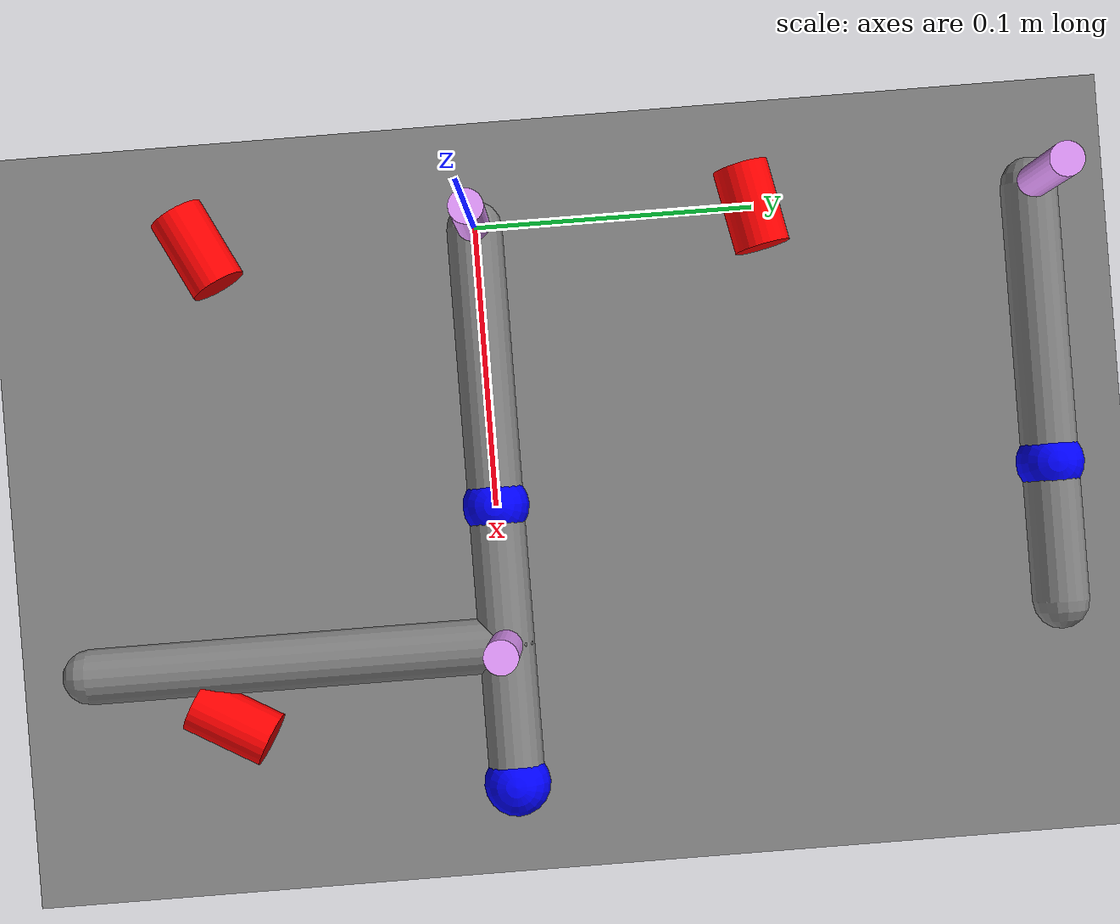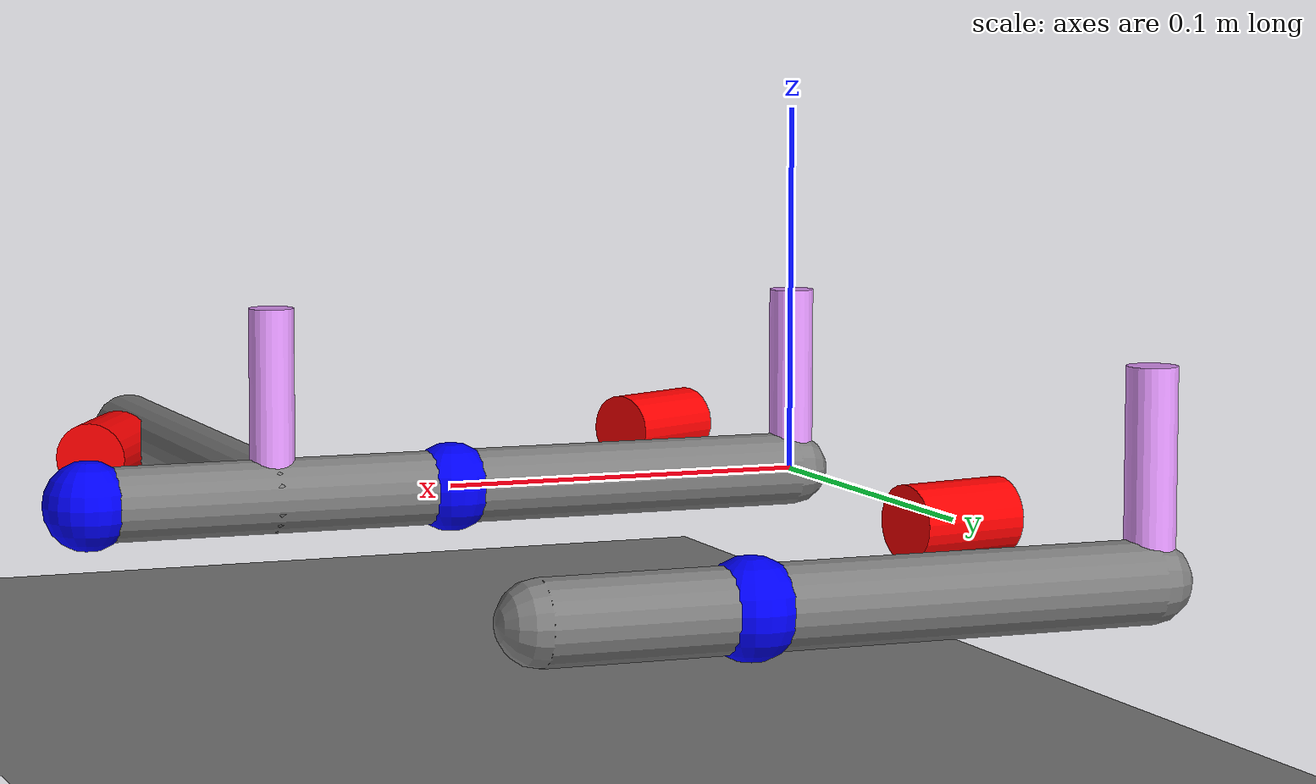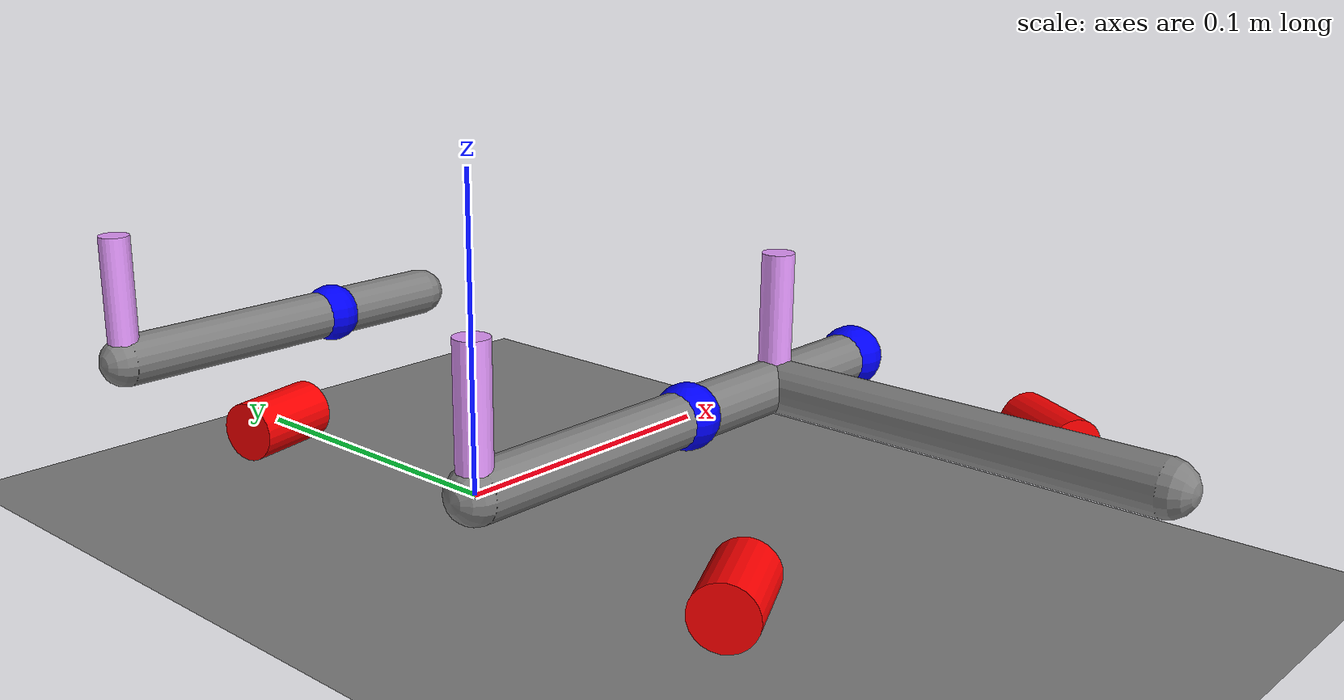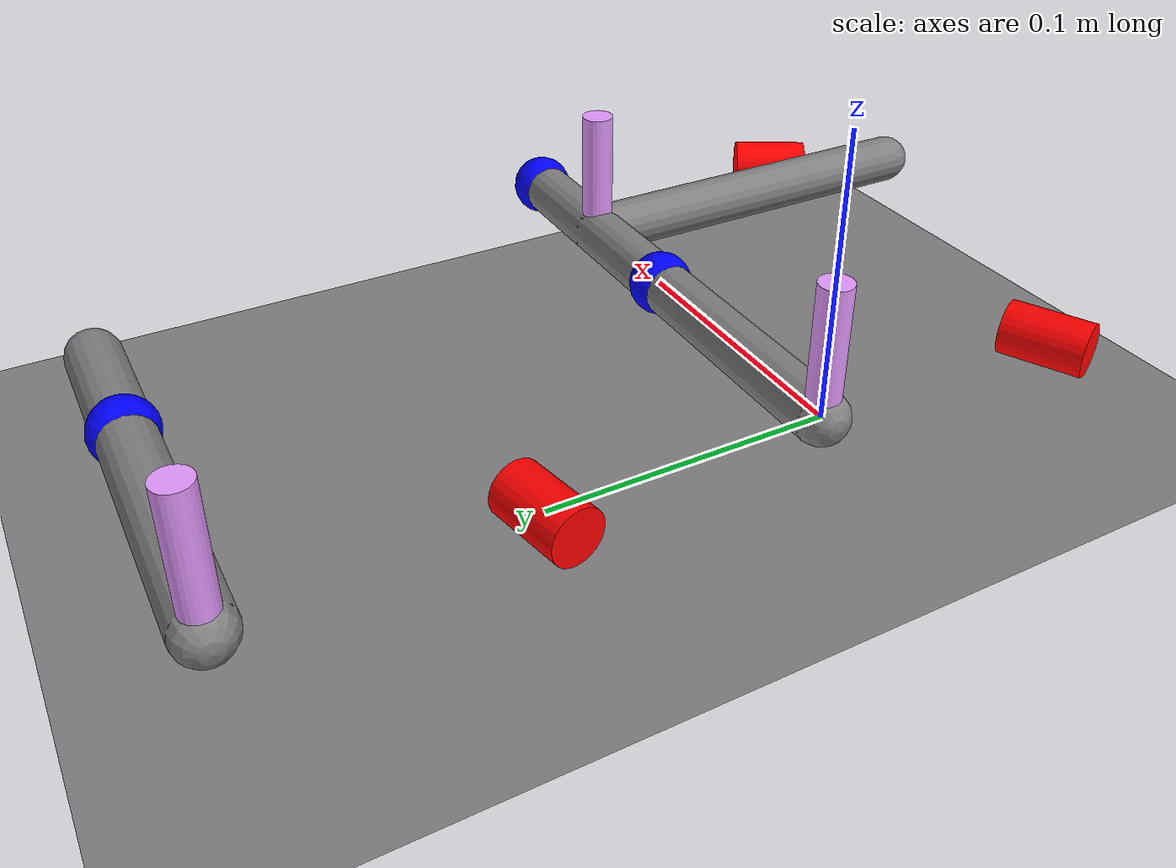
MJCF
<mujoco model="slider-crank">
  <!-- these are the visual properties associated with the slider-crank mechanism: -->
  <visual>
    <scale slidercrank=".1"/>
    <rgba slidercrank="0.5 0.4 0.8 1" crankbroken="0.0 0.6 0.2 1"/>
  </visual>

  <!-- defining some defaults for readability -->
  <default>
    <position ctrllimited="true" ctrlrange="-.1 .1" kp="30"/>
    <default class="joint">
      <geom type="cylinder" size=".006" fromto="0 0 0 0 0 .05" rgba=".9 .6 1 1"/>
    </default>
    <default class="slidersite">
      <site type="cylinder" size=".01 .015" rgba="1 0 0 1" />
    </default>
    <default class="cranksite">
      <site size=".012" rgba="0 0 1 1" />
    </default>
  </default>

  <worldbody>
    <light pos="0 0 1"/>
    <geom type="plane" size=".5 .5 .01" pos="0 0 -.05"/>
    <site name="slidersite" class="slidersite" pos="0 -.1 0" zaxis="1 .5 0"/>
    <body>
      <joint damping=".1"/>
      <geom class="joint"/>
      <geom type="capsule" size=".01" fromto="0 0 0 .2 0 0"/>
      <site name="cranksite" class="cranksite" pos=".1 0 0"/>
      <site name="cranksite2" class="cranksite" pos=".2 0 0"/>
      <body pos=".15 0 0">
        <joint damping=".1"/>
        <geom class="joint"/>
        <geom type="capsule" size=".01" fromto="0 -.15 0 0 0 0"/>
        <site name="slidersite2" class="slidersite" pos=".02 -.1 0" euler="-90 30 0"/>
      </body>
    </body>
    <site name="slidersite3" class="slidersite" pos="0 .1 0" zaxis="1 .2 0"/>
    <body pos="0 .2 0">
      <joint  damping=".1"/>
      <geom class="joint"/>
      <geom type="capsule" size=".01" fromto="0 0 0 .15 0 0"/>
      <site name="cranksite3" class="cranksite" pos=".1 0 0" size=".012"/>
    </body>
  </worldbody>

  <actuator>
    <!-- forward slider-crank: the slider site is attached to the parent -->
    <position name="forward" cranksite="cranksite" slidersite="slidersite" cranklength=".08"/>
    <!-- backward slider-crank: the slider site is attached to the child -->
    <position name="backward" cranksite="cranksite2" slidersite="slidersite2" cranklength=".06"/>
    <!--  The "broken-crank" actuator is "broken" in the initial state: the crank length is too
          short to maintain the requested geometric relationship -->
    <position name="broken" cranksite="cranksite3" slidersite="slidersite3" cranklength=".05"/>
  </actuator>
</mujoco>
